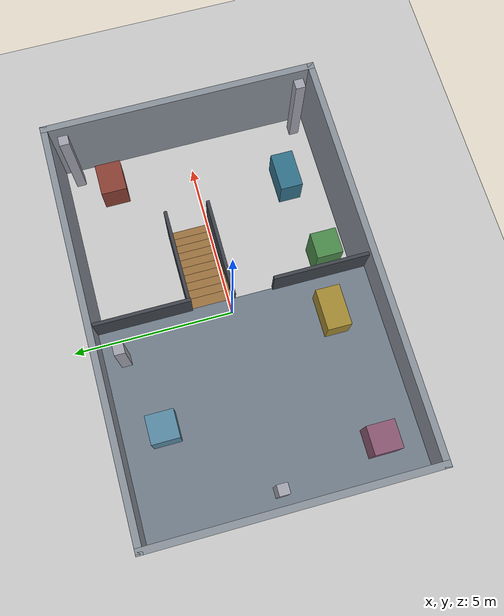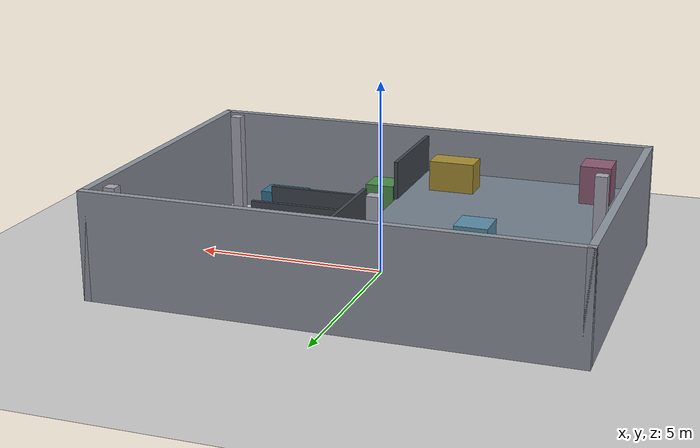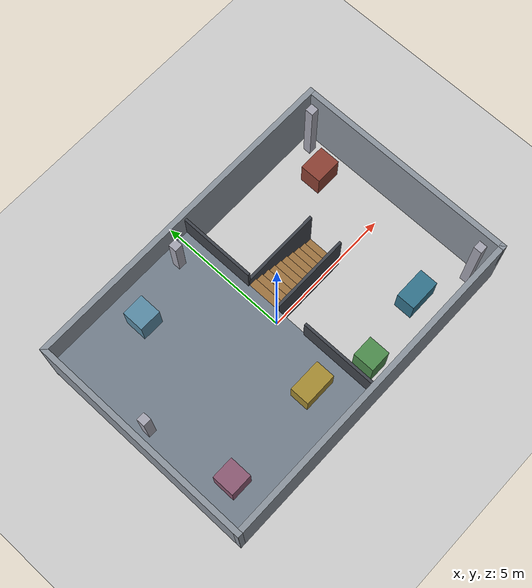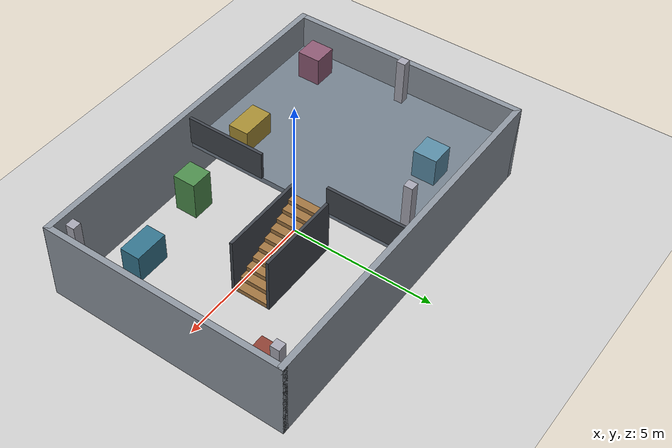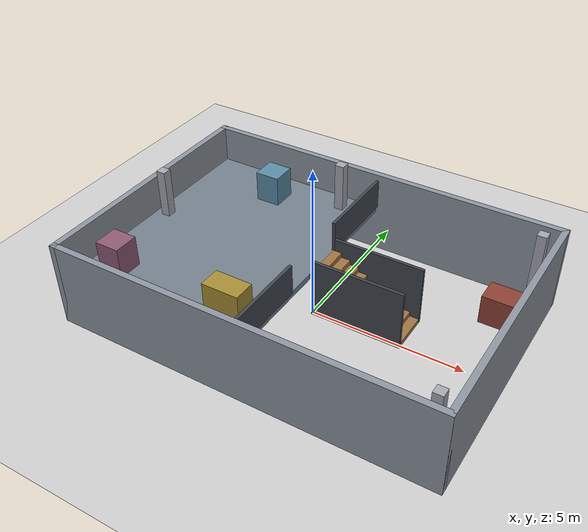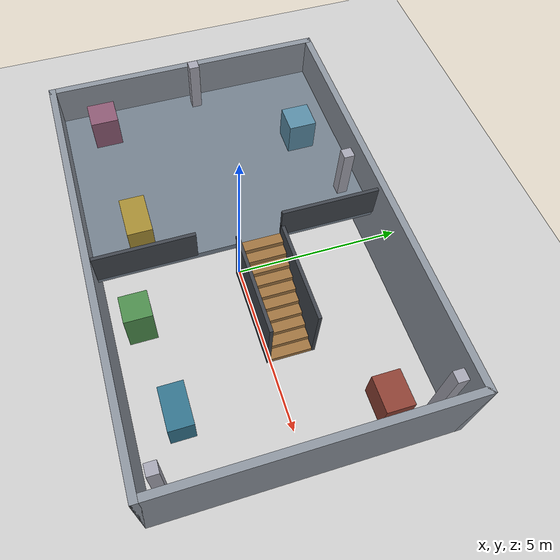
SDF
<?xml version="1.0" ?>
<sdf version="1.6">
  <world name="demo_two_floor">
    <include><uri>model://ground_plane</uri></include>
    <include><uri>model://sun</uri></include>
    <model name="demo_two_floor_geometry">
      <static>true</static>
    <link name="wall_n">
      <pose>0.0000 4.1000 1.4000 0 0 0</pose>
      <collision name="wall_n_col"><geometry><box><size>12.4000 0.2000 2.8000</size></box></geometry></collision>
      <visual name="wall_n_vis"><geometry><box><size>12.4000 0.2000 2.8000</size></box></geometry><material><ambient>0.55 0.58 0.62 1</ambient><diffuse>0.55 0.58 0.62 1</diffuse></material></visual>
    </link>
    <link name="wall_s">
      <pose>0.0000 -4.1000 1.4000 0 0 0</pose>
      <collision name="wall_s_col"><geometry><box><size>12.4000 0.2000 2.8000</size></box></geometry></collision>
      <visual name="wall_s_vis"><geometry><box><size>12.4000 0.2000 2.8000</size></box></geometry><material><ambient>0.55 0.58 0.62 1</ambient><diffuse>0.55 0.58 0.62 1</diffuse></material></visual>
    </link>
    <link name="wall_e">
      <pose>6.1000 0.0000 1.4000 0 0 0</pose>
      <collision name="wall_e_col"><geometry><box><size>0.2000 8.4000 2.8000</size></box></geometry></collision>
      <visual name="wall_e_vis"><geometry><box><size>0.2000 8.4000 2.8000</size></box></geometry><material><ambient>0.55 0.58 0.62 1</ambient><diffuse>0.55 0.58 0.62 1</diffuse></material></visual>
    </link>
    <link name="wall_w">
      <pose>-6.1000 0.0000 1.4000 0 0 0</pose>
      <collision name="wall_w_col"><geometry><box><size>0.2000 8.4000 2.8000</size></box></geometry></collision>
      <visual name="wall_w_vis"><geometry><box><size>0.2000 8.4000 2.8000</size></box></geometry><material><ambient>0.55 0.58 0.62 1</ambient><diffuse>0.55 0.58 0.62 1</diffuse></material></visual>
    </link>
    <link name="mezz">
      <pose>-3.0000 0.0000 1.5000 0 0 0</pose>
      <collision name="mezz_col"><geometry><box><size>6.0000 8.0000 0.2000</size></box></geometry></collision>
      <visual name="mezz_vis"><geometry><box><size>6.0000 8.0000 0.2000</size></box></geometry><material><ambient>0.45 0.50 0.55 1</ambient><diffuse>0.45 0.50 0.55 1</diffuse></material></visual>
    </link>
    <link name="step1">
      <pose>2.8500 0.6000 0.0800 0 0 0</pose>
      <collision name="step1_col"><geometry><box><size>0.3000 1.2000 0.1600</size></box></geometry></collision>
      <visual name="step1_vis"><geometry><box><size>0.3000 1.2000 0.1600</size></box></geometry><material><ambient>0.62 0.45 0.25 1</ambient><diffuse>0.62 0.45 0.25 1</diffuse></material></visual>
    </link>
    <link name="step2">
      <pose>2.5500 0.6000 0.1600 0 0 0</pose>
      <collision name="step2_col"><geometry><box><size>0.3000 1.2000 0.3200</size></box></geometry></collision>
      <visual name="step2_vis"><geometry><box><size>0.3000 1.2000 0.3200</size></box></geometry><material><ambient>0.62 0.45 0.25 1</ambient><diffuse>0.62 0.45 0.25 1</diffuse></material></visual>
    </link>
    <link name="step3">
      <pose>2.2500 0.6000 0.2400 0 0 0</pose>
      <collision name="step3_col"><geometry><box><size>0.3000 1.2000 0.4800</size></box></geometry></collision>
      <visual name="step3_vis"><geometry><box><size>0.3000 1.2000 0.4800</size></box></geometry><material><ambient>0.62 0.45 0.25 1</ambient><diffuse>0.62 0.45 0.25 1</diffuse></material></visual>
    </link>
    <link name="step4">
      <pose>1.9500 0.6000 0.3200 0 0 0</pose>
      <collision name="step4_col"><geometry><box><size>0.3000 1.2000 0.6400</size></box></geometry></collision>
      <visual name="step4_vis"><geometry><box><size>0.3000 1.2000 0.6400</size></box></geometry><material><ambient>0.62 0.45 0.25 1</ambient><diffuse>0.62 0.45 0.25 1</diffuse></material></visual>
    </link>
    <link name="step5">
      <pose>1.6500 0.6000 0.4000 0 0 0</pose>
      <collision name="step5_col"><geometry><box><size>0.3000 1.2000 0.8000</size></box></geometry></collision>
      <visual name="step5_vis"><geometry><box><size>0.3000 1.2000 0.8000</size></box></geometry><material><ambient>0.62 0.45 0.25 1</ambient><diffuse>0.62 0.45 0.25 1</diffuse></material></visual>
    </link>
    <link name="step6">
      <pose>1.3500 0.6000 0.4800 0 0 0</pose>
      <collision name="step6_col"><geometry><box><size>0.3000 1.2000 0.9600</size></box></geometry></collision>
      <visual name="step6_vis"><geometry><box><size>0.3000 1.2000 0.9600</size></box></geometry><material><ambient>0.62 0.45 0.25 1</ambient><diffuse>0.62 0.45 0.25 1</diffuse></material></visual>
    </link>
    <link name="step7">
      <pose>1.0500 0.6000 0.5600 0 0 0</pose>
      <collision name="step7_col"><geometry><box><size>0.3000 1.2000 1.1200</size></box></geometry></collision>
      <visual name="step7_vis"><geometry><box><size>0.3000 1.2000 1.1200</size></box></geometry><material><ambient>0.62 0.45 0.25 1</ambient><diffuse>0.62 0.45 0.25 1</diffuse></material></visual>
    </link>
    <link name="step8">
      <pose>0.7500 0.6000 0.6400 0 0 0</pose>
      <collision name="step8_col"><geometry><box><size>0.3000 1.2000 1.2800</size></box></geometry></collision>
      <visual name="step8_vis"><geometry><box><size>0.3000 1.2000 1.2800</size></box></geometry><material><ambient>0.62 0.45 0.25 1</ambient><diffuse>0.62 0.45 0.25 1</diffuse></material></visual>
    </link>
    <link name="step9">
      <pose>0.4500 0.6000 0.7200 0 0 0</pose>
      <collision name="step9_col"><geometry><box><size>0.3000 1.2000 1.4400</size></box></geometry></collision>
      <visual name="step9_vis"><geometry><box><size>0.3000 1.2000 1.4400</size></box></geometry><material><ambient>0.62 0.45 0.25 1</ambient><diffuse>0.62 0.45 0.25 1</diffuse></material></visual>
    </link>
    <link name="step10">
      <pose>0.1500 0.6000 0.8000 0 0 0</pose>
      <collision name="step10_col"><geometry><box><size>0.3000 1.2000 1.6000</size></box></geometry></collision>
      <visual name="step10_vis"><geometry><box><size>0.3000 1.2000 1.6000</size></box></geometry><material><ambient>0.62 0.45 0.25 1</ambient><diffuse>0.62 0.45 0.25 1</diffuse></material></visual>
    </link>
    <link name="rail_n">
      <pose>1.5000 1.2500 1.0000 0 0 0</pose>
      <collision name="rail_n_col"><geometry><box><size>3.0000 0.1000 2.0000</size></box></geometry></collision>
      <visual name="rail_n_vis"><geometry><box><size>3.0000 0.1000 2.0000</size></box></geometry><material><ambient>0.25 0.27 0.30 1</ambient><diffuse>0.25 0.27 0.30 1</diffuse></material></visual>
    </link>
    <link name="rail_s">
      <pose>1.5000 -0.0500 1.0000 0 0 0</pose>
      <collision name="rail_s_col"><geometry><box><size>3.0000 0.1000 2.0000</size></box></geometry></collision>
      <visual name="rail_s_vis"><geometry><box><size>3.0000 0.1000 2.0000</size></box></geometry><material><ambient>0.25 0.27 0.30 1</ambient><diffuse>0.25 0.27 0.30 1</diffuse></material></visual>
    </link>
    <link name="up_rail_n">
      <pose>0.0000 2.6000 2.1000 0 0 0</pose>
      <collision name="up_rail_n_col"><geometry><box><size>0.1000 2.8000 1.0000</size></box></geometry></collision>
      <visual name="up_rail_n_vis"><geometry><box><size>0.1000 2.8000 1.0000</size></box></geometry><material><ambient>0.25 0.27 0.30 1</ambient><diffuse>0.25 0.27 0.30 1</diffuse></material></visual>
    </link>
    <link name="up_rail_s">
      <pose>0.0000 -2.6000 2.1000 0 0 0</pose>
      <collision name="up_rail_s_col"><geometry><box><size>0.1000 2.8000 1.0000</size></box></geometry></collision>
      <visual name="up_rail_s_vis"><geometry><box><size>0.1000 2.8000 1.0000</size></box></geometry><material><ambient>0.25 0.27 0.30 1</ambient><diffuse>0.25 0.27 0.30 1</diffuse></material></visual>
    </link>
    <link name="gf_table1">
      <pose>3.8000 -2.8000 0.5000 0 0 0</pose>
      <collision name="gf_table1_col"><geometry><box><size>1.2000 0.7000 1.0000</size></box></geometry></collision>
      <visual name="gf_table1_vis"><geometry><box><size>1.2000 0.7000 1.0000</size></box></geometry><material><ambient>0.20 0.45 0.55 1</ambient><diffuse>0.20 0.45 0.55 1</diffuse></material></visual>
    </link>
    <link name="gf_table2">
      <pose>5.0000 2.6000 0.5000 0 0 0</pose>
      <collision name="gf_table2_col"><geometry><box><size>1.0000 0.8000 1.0000</size></box></geometry></collision>
      <visual name="gf_table2_vis"><geometry><box><size>1.0000 0.8000 1.0000</size></box></geometry><material><ambient>0.55 0.25 0.20 1</ambient><diffuse>0.55 0.25 0.20 1</diffuse></material></visual>
    </link>
    <link name="gf_cab1">
      <pose>1.0000 -3.2000 0.7000 0 0 0</pose>
      <collision name="gf_cab1_col"><geometry><box><size>0.8000 0.8000 1.4000</size></box></geometry></collision>
      <visual name="gf_cab1_vis"><geometry><box><size>0.8000 0.8000 1.4000</size></box></geometry><material><ambient>0.30 0.55 0.30 1</ambient><diffuse>0.30 0.55 0.30 1</diffuse></material></visual>
    </link>
    <link name="gf_cab2">
      <pose>-4.8000 2.7000 0.7000 0 0 0</pose>
      <collision name="gf_cab2_col"><geometry><box><size>0.7000 0.9000 1.4000</size></box></geometry></collision>
      <visual name="gf_cab2_vis"><geometry><box><size>0.7000 0.9000 1.4000</size></box></geometry><material><ambient>0.50 0.40 0.60 1</ambient><diffuse>0.50 0.40 0.60 1</diffuse></material></visual>
    </link>
    <link name="gf_col1">
      <pose>5.6000 -3.6000 1.4000 0 0 0</pose>
      <collision name="gf_col1_col"><geometry><box><size>0.3000 0.3000 2.8000</size></box></geometry></collision>
      <visual name="gf_col1_vis"><geometry><box><size>0.3000 0.3000 2.8000</size></box></geometry><material><ambient>0.65 0.65 0.70 1</ambient><diffuse>0.65 0.65 0.70 1</diffuse></material></visual>
    </link>
    <link name="gf_col2">
      <pose>5.6000 3.6000 1.4000 0 0 0</pose>
      <collision name="gf_col2_col"><geometry><box><size>0.3000 0.3000 2.8000</size></box></geometry></collision>
      <visual name="gf_col2_vis"><geometry><box><size>0.3000 0.3000 2.8000</size></box></geometry><material><ambient>0.65 0.65 0.70 1</ambient><diffuse>0.65 0.65 0.70 1</diffuse></material></visual>
    </link>
    <link name="uf_table1">
      <pose>-1.2000 -2.6000 2.0000 0 0 0</pose>
      <collision name="uf_table1_col"><geometry><box><size>1.2000 0.7000 0.8000</size></box></geometry></collision>
      <visual name="uf_table1_vis"><geometry><box><size>1.2000 0.7000 0.8000</size></box></geometry><material><ambient>0.65 0.55 0.20 1</ambient><diffuse>0.65 0.55 0.20 1</diffuse></material></visual>
    </link>
    <link name="uf_cab1">
      <pose>-3.2000 2.8000 2.1000 0 0 0</pose>
      <collision name="uf_cab1_col"><geometry><box><size>0.8000 0.8000 1.0000</size></box></geometry></collision>
      <visual name="uf_cab1_vis"><geometry><box><size>0.8000 0.8000 1.0000</size></box></geometry><material><ambient>0.35 0.55 0.65 1</ambient><diffuse>0.35 0.55 0.65 1</diffuse></material></visual>
    </link>
    <link name="uf_cab2">
      <pose>-5.0000 -2.8000 2.1000 0 0 0</pose>
      <collision name="uf_cab2_col"><geometry><box><size>0.8000 0.8000 1.0000</size></box></geometry></collision>
      <visual name="uf_cab2_vis"><geometry><box><size>0.8000 0.8000 1.0000</size></box></geometry><material><ambient>0.55 0.35 0.45 1</ambient><diffuse>0.55 0.35 0.45 1</diffuse></material></visual>
    </link>
    <link name="uf_col1">
      <pose>-5.6000 0.2000 2.4000 0 0 0</pose>
      <collision name="uf_col1_col"><geometry><box><size>0.3000 0.3000 1.6000</size></box></geometry></collision>
      <visual name="uf_col1_vis"><geometry><box><size>0.3000 0.3000 1.6000</size></box></geometry><material><ambient>0.65 0.65 0.70 1</ambient><diffuse>0.65 0.65 0.70 1</diffuse></material></visual>
    </link>
    <link name="uf_col2">
      <pose>-1.0000 3.4000 2.4000 0 0 0</pose>
      <collision name="uf_col2_col"><geometry><box><size>0.3000 0.3000 1.6000</size></box></geometry></collision>
      <visual name="uf_col2_vis"><geometry><box><size>0.3000 0.3000 1.6000</size></box></geometry><material><ambient>0.65 0.65 0.70 1</ambient><diffuse>0.65 0.65 0.70 1</diffuse></material></visual>
    </link>
    </model>
    <physics type="ode"><max_step_size>0.001</max_step_size><real_time_update_rate>1000</real_time_update_rate></physics>
    <scene><ambient>0.5 0.5 0.5 1</ambient><background>0.7 0.7 0.7 1</background><shadows>1</shadows></scene>
  </world>
</sdf>
